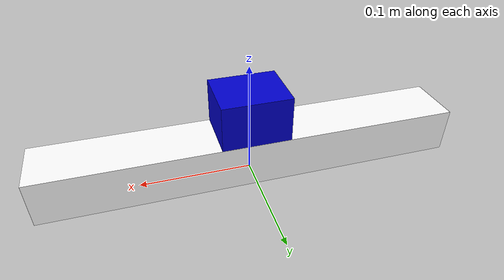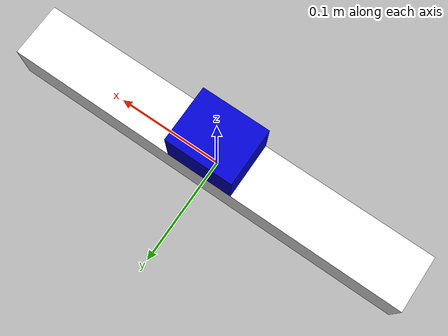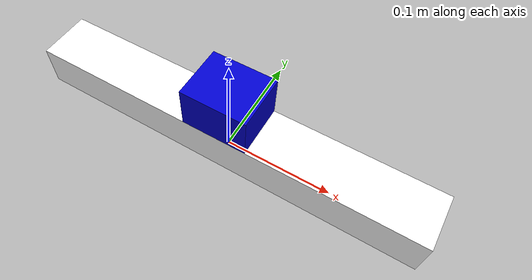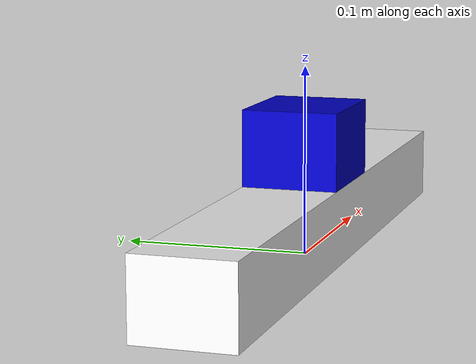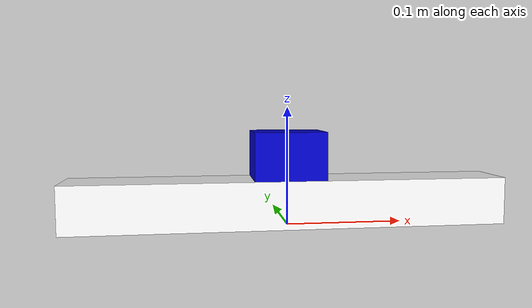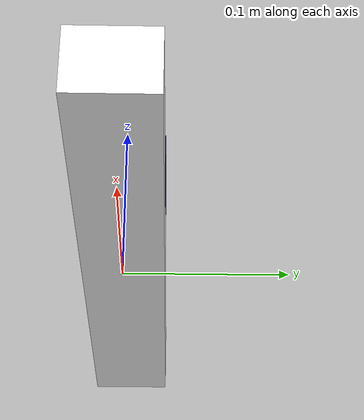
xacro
<?xml version="1.0" ?>
<robot name="linear_actuator" xmlns:xacro="http://www.ros.org/wiki/xacro">

		<material name="red">
			<color rgba="0.8 0 0 1"/>
		</material>

		<material name="blue">
			<color rgba="0 0 0.8 1"/>
		</material>

		<material name="white">
			<color rgba="1 1 1 1"/>
		</material>

		<material name="black">
			<color rgba="0 0 0 1"/>
		</material>

		<link name="world">
		</link>

		<joint name="joint_w" type="fixed">
			<parent link="world"/>
			<child link="actuator_base"/>
			<origin xyz="0 0 0"/>
		</joint>

		<link name="actuator_base">
			<visual>
				<origin rpy="0 0 0" xyz="0 0 0.02" />
				<geometry>
					<box size = "0.37 0.05 0.04" />
				</geometry>
				<material name="white" />
			</visual>
			<collision>
				<origin rpy="0 0 0" xyz="0 0 0.02" />
				<geometry>
					<box size="0.37 0.05 0.04" />
				</geometry>
			</collision>
			<inertial>
				<origin rpy="0 0 0" xyz="0 0 0" />
				<mass value="1" />
				<inertia ixx="100" ixy="0" ixz="0" iyy="100" iyz="0" izz="100" />
			</inertial>
		</link>

		<joint name="linear_prismatic_joint" type="prismatic">
			<parent link="actuator_base" />
			<child link="linear_stage" />
			<origin rpy="0 0 0" xyz="0 0 0" />
			<limit effort="1000.0" lower="-6.28" upper="6.28" velocity="0.5"/>
			<limit effort="1000.0" velocity="0.5" />
			<axis xyz="1 0 0" />
			<limit lower="-0.155" upper="0.155"/>
		</joint>

		<link name="linear_stage">
			<visual>
				<origin rpy="0 0 0" xyz="0 0 0.06" />
				<geometry>
					<box size = "0.06 0.05 0.04" />
				</geometry>
				<material name="blue" />
			</visual>
			<collision>
				<origin rpy="0 0 0" xyz="0 0 0.06" />
				<geometry>
					<box size="0.06 0.05 0.04" />
				</geometry>
			</collision>

			<inertial>
				<origin rpy="0 0 0" xyz="0 0 0" />
				<mass value="1" />
				<inertia ixx="100" ixy="0" ixz="0" iyy="100" iyz="0" izz="100" />
			</inertial>
		</link>

		<gazebo>
        <plugin name="gazebo_ros_control" filename="libgazebo_ros_control.so">
            <robotNamespace>/</robotNamespace>
        </plugin>
    	</gazebo>

</robot>
